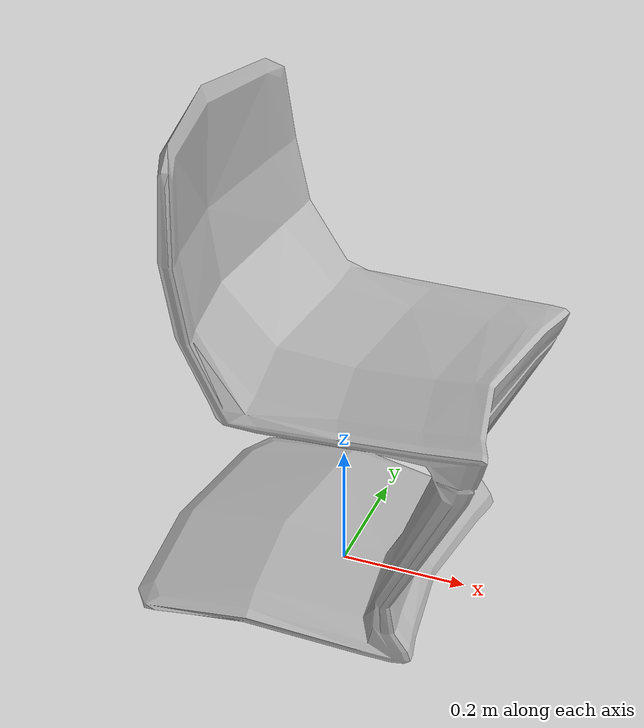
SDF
<?xml version="1.0" ?>
<sdf version="1.6">
  <model name="aws_robomaker_residential_ChairD_01">
  <static>true</static>
  <static>true</static>
  <static>true</static>
    <link name="link">

      <inertial>
        <mass>4.5</mass>
          <inertia>
            <ixy>0</ixy>
            <ixz>0</ixz>
            <iyz>0</iyz>
            <ixx>0.217</ixx>
            <iyy>0.217</iyy>
            <izz>0.067</izz>
          </inertia>
      </inertial>

      <collision name="collision">

        <geometry>
          <mesh>
            <uri>file://models/aws_robomaker_residential_ChairD_01/meshes/aws_ChairD_01_collision.DAE</uri>
            <scale>1 1 1</scale>
          </mesh>
        </geometry>

      </collision>
      <visual name="visual">
	    <geometry>
          <mesh>
            <uri>file://models/aws_robomaker_residential_ChairD_01/meshes/aws_ChairD_01_visual.DAE</uri>
          </mesh>
        </geometry>
      <meta> <layer> 1 </layer></meta>
</visual>
    </link>
  </model>
</sdf>
